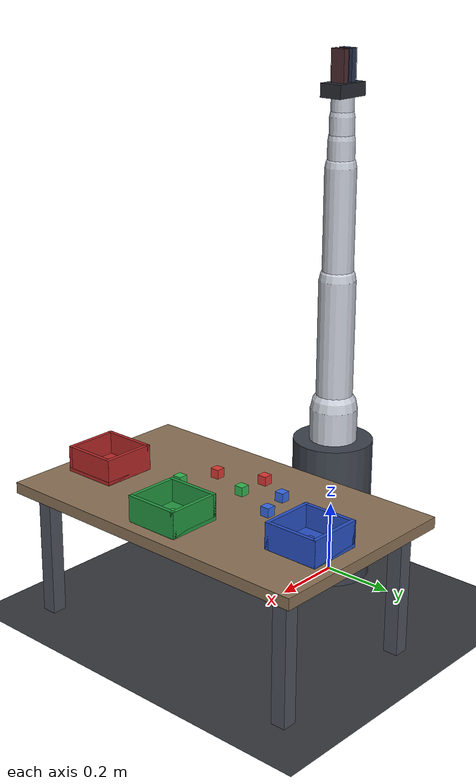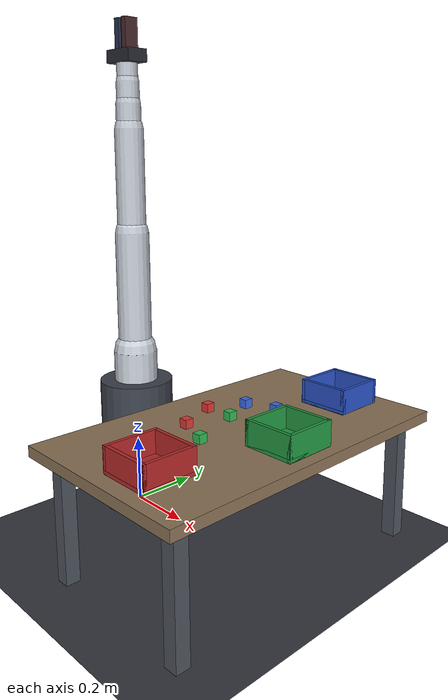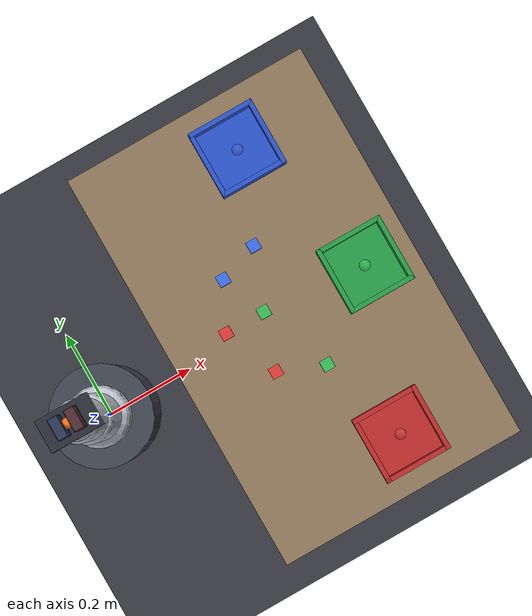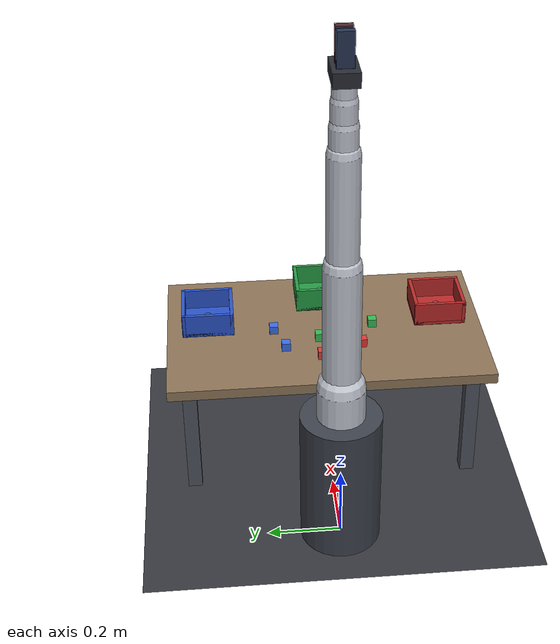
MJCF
<mujoco model="longhorizon_sorting_cell">
  <!--
    Long-Horizon Sorting Cell
    A tabletop pick-place-and-sort workcell for the FFAI Robothon 2026 submission.
    Six colour-coded cubes must be transferred into the matching bin.
  -->

  <compiler angle="radian" autolimits="true"/>
  <option timestep="0.002" integrator="implicitfast" cone="elliptic" impratio="10"
          gravity="0 0 -9.81"/>

  <include file="arm.xml"/>

  <statistic center="0.40 0 0.50" extent="1.4"/>

  <visual>
    <global azimuth="140" elevation="-22" offwidth="1280" offheight="720"/>
    <quality shadowsize="4096" offsamples="8"/>
    <map force="0.1" zfar="30"/>
    <headlight ambient="0.35 0.35 0.35" diffuse="0.55 0.55 0.55" specular="0.2 0.2 0.2"/>
  </visual>

  <asset>
    <texture name="skybox" type="skybox" builtin="gradient"
             rgb1="0.16 0.19 0.26" rgb2="0.02 0.02 0.04" width="512" height="512"/>
    <texture name="grid_tex" type="2d" builtin="checker"
             rgb1="0.18 0.19 0.21" rgb2="0.23 0.24 0.27" width="512" height="512"/>
    <material name="floor_mat" texture="grid_tex" texrepeat="8 8" reflectance="0.08"/>
    <material name="table_mat" rgba="0.55 0.45 0.34 1" reflectance="0.04"/>
    <material name="frame_mat" rgba="0.30 0.32 0.36 1"/>
    <material name="bin_red_mat" rgba="0.72 0.16 0.16 1"/>
    <material name="bin_green_mat" rgba="0.14 0.60 0.26 1"/>
    <material name="bin_blue_mat" rgba="0.16 0.32 0.78 1"/>
    <material name="cube_red_mat" rgba="0.86 0.22 0.20 1"/>
    <material name="cube_green_mat" rgba="0.20 0.72 0.32 1"/>
    <material name="cube_blue_mat" rgba="0.22 0.42 0.90 1"/>
  </asset>

  <default>
    <default class="cube">
      <geom type="box" size="0.0125 0.0125 0.0125" mass="0.06" condim="4"
            friction="1.2 0.03 0.0006" solref="0.006 1" solimp="0.96 0.99 0.001"/>
    </default>
    <default class="bin">
      <geom type="box" density="1500" condim="3" friction="0.8 0.02 0.001"/>
    </default>
  </default>

  <worldbody>
    <light name="key_light" pos="0.90 -0.90 2.10" dir="-0.35 0.35 -1"
           diffuse="0.75 0.75 0.72" specular="0.25 0.25 0.25" castshadow="true"/>
    <light name="fill_light" pos="-0.60 0.80 1.80" dir="0.35 -0.35 -1"
           diffuse="0.30 0.30 0.34" specular="0.05 0.05 0.05" castshadow="false"/>

    <geom name="floor" type="plane" size="4 4 0.05" material="floor_mat" condim="3"/>

    <camera name="overview" pos="1.35 -1.05 1.25"
            xyaxes="0.759 0.651 0 -0.342 0.398 0.854" fovy="45"/>
    <camera name="front" pos="1.55 0 0.95" xyaxes="0 1 0 -0.42 0 0.91" fovy="42"/>
    <camera name="topdown" pos="0.46 0 1.55" xyaxes="1 0 0 0 1 0" fovy="46"/>

    <!-- Workbench -->
    <body name="table" pos="0 0 0">
      <geom name="table_top" type="box" pos="0.46 0 0.355" size="0.28 0.46 0.015"
            material="table_mat" condim="3" friction="0.9 0.02 0.001"/>
      <geom name="table_leg_1" type="box" pos="0.24 0.40 0.170" size="0.02 0.02 0.170" material="frame_mat"/>
      <geom name="table_leg_2" type="box" pos="0.24 -0.40 0.170" size="0.02 0.02 0.170" material="frame_mat"/>
      <geom name="table_leg_3" type="box" pos="0.68 0.40 0.170" size="0.02 0.02 0.170" material="frame_mat"/>
      <geom name="table_leg_4" type="box" pos="0.68 -0.40 0.170" size="0.02 0.02 0.170" material="frame_mat"/>
    </body>

    <!-- Sorting bins. Drop targets are the sites at the bin centre. -->
    <body name="bin_red" pos="0.52 -0.34 0.37">
      <geom class="bin" name="bin_red_floor" pos="0 0 0.005" size="0.075 0.075 0.005" material="bin_red_mat"/>
      <geom class="bin" name="bin_red_wall_xp" pos="0.070 0 0.035" size="0.005 0.075 0.035" material="bin_red_mat"/>
      <geom class="bin" name="bin_red_wall_xn" pos="-0.070 0 0.035" size="0.005 0.075 0.035" material="bin_red_mat"/>
      <geom class="bin" name="bin_red_wall_yp" pos="0 0.070 0.035" size="0.075 0.005 0.035" material="bin_red_mat"/>
      <geom class="bin" name="bin_red_wall_yn" pos="0 -0.070 0.035" size="0.075 0.005 0.035" material="bin_red_mat"/>
      <site name="bin_red_site" pos="0 0 0.02" size="0.012" rgba="0.9 0.3 0.3 0.35"/>
    </body>

    <body name="bin_green" pos="0.63 0 0.37">
      <geom class="bin" name="bin_green_floor" pos="0 0 0.005" size="0.075 0.075 0.005" material="bin_green_mat"/>
      <geom class="bin" name="bin_green_wall_xp" pos="0.070 0 0.035" size="0.005 0.075 0.035" material="bin_green_mat"/>
      <geom class="bin" name="bin_green_wall_xn" pos="-0.070 0 0.035" size="0.005 0.075 0.035" material="bin_green_mat"/>
      <geom class="bin" name="bin_green_wall_yp" pos="0 0.070 0.035" size="0.075 0.005 0.035" material="bin_green_mat"/>
      <geom class="bin" name="bin_green_wall_yn" pos="0 -0.070 0.035" size="0.075 0.005 0.035" material="bin_green_mat"/>
      <site name="bin_green_site" pos="0 0 0.02" size="0.012" rgba="0.3 0.9 0.4 0.35"/>
    </body>

    <body name="bin_blue" pos="0.52 0.34 0.37">
      <geom class="bin" name="bin_blue_floor" pos="0 0 0.005" size="0.075 0.075 0.005" material="bin_blue_mat"/>
      <geom class="bin" name="bin_blue_wall_xp" pos="0.070 0 0.035" size="0.005 0.075 0.035" material="bin_blue_mat"/>
      <geom class="bin" name="bin_blue_wall_xn" pos="-0.070 0 0.035" size="0.005 0.075 0.035" material="bin_blue_mat"/>
      <geom class="bin" name="bin_blue_wall_yp" pos="0 0.070 0.035" size="0.075 0.005 0.035" material="bin_blue_mat"/>
      <geom class="bin" name="bin_blue_wall_yn" pos="0 -0.070 0.035" size="0.075 0.005 0.035" material="bin_blue_mat"/>
      <site name="bin_blue_site" pos="0 0 0.02" size="0.012" rgba="0.3 0.4 0.9 0.35"/>
    </body>

    <!-- Six cubes to be sorted. Free joints, randomised at reset by the Python layer. -->
    <body name="cube_red_1" pos="0.36 -0.10 0.3825">
      <freejoint name="cube_red_1_free"/>
      <geom class="cube" name="cube_red_1_geom" material="cube_red_mat"/>
      <site name="cube_red_1_site" size="0.004" rgba="1 1 1 0"/>
    </body>

    <body name="cube_red_2" pos="0.31 0.02 0.3825">
      <freejoint name="cube_red_2_free"/>
      <geom class="cube" name="cube_red_2_geom" material="cube_red_mat"/>
      <site name="cube_red_2_site" size="0.004" rgba="1 1 1 0"/>
    </body>

    <body name="cube_green_1" pos="0.40 0.02 0.3825">
      <freejoint name="cube_green_1_free"/>
      <geom class="cube" name="cube_green_1_geom" material="cube_green_mat"/>
      <site name="cube_green_1_site" size="0.004" rgba="1 1 1 0"/>
    </body>

    <body name="cube_green_2" pos="0.46 -0.14 0.3825">
      <freejoint name="cube_green_2_free"/>
      <geom class="cube" name="cube_green_2_geom" material="cube_green_mat"/>
      <site name="cube_green_2_site" size="0.004" rgba="1 1 1 0"/>
    </body>

    <body name="cube_blue_1" pos="0.36 0.12 0.3825">
      <freejoint name="cube_blue_1_free"/>
      <geom class="cube" name="cube_blue_1_geom" material="cube_blue_mat"/>
      <site name="cube_blue_1_site" size="0.004" rgba="1 1 1 0"/>
    </body>

    <body name="cube_blue_2" pos="0.45 0.15 0.3825">
      <freejoint name="cube_blue_2_free"/>
      <geom class="cube" name="cube_blue_2_geom" material="cube_blue_mat"/>
      <site name="cube_blue_2_site" size="0.004" rgba="1 1 1 0"/>
    </body>
  </worldbody>

  <sensor>
    <framepos name="pose_cube_red_1" objtype="site" objname="cube_red_1_site"/>
    <framepos name="pose_cube_red_2" objtype="site" objname="cube_red_2_site"/>
    <framepos name="pose_cube_green_1" objtype="site" objname="cube_green_1_site"/>
    <framepos name="pose_cube_green_2" objtype="site" objname="cube_green_2_site"/>
    <framepos name="pose_cube_blue_1" objtype="site" objname="cube_blue_1_site"/>
    <framepos name="pose_cube_blue_2" objtype="site" objname="cube_blue_2_site"/>
  </sensor>
</mujoco>

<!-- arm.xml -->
<mujoco model="sortbot_arm">
  <!-- 6-DoF arm with a coupled parallel-jaw gripper. Primitive geoms only, no meshes. -->

  <compiler angle="radian" autolimits="true"/>

  <default>
    <default class="arm">
      <joint type="hinge" damping="12" armature="0.12" frictionloss="0.35"/>
      <geom type="capsule" rgba="0.78 0.80 0.84 1" density="850"
            friction="0.9 0.02 0.001" solref="0.008 1" solimp="0.95 0.99 0.001"/>
      <position kp="1200" kv="90" forcerange="-280 280"/>
    </default>
    <default class="jaw">
      <joint type="slide" damping="40" armature="0.02"/>
      <geom type="box" rgba="0.16 0.17 0.20 1" density="1100" condim="4" priority="2"
            friction="1.8 0.06 0.0008" solref="0.006 1" solimp="0.97 0.995 0.001"/>
    </default>
  </default>

  <worldbody>
    <body name="pedestal" pos="0 0 0">
      <geom name="pedestal_geom" type="cylinder" size="0.11 0.20" pos="0 0 0.20"
            rgba="0.24 0.26 0.30 1" density="2000"/>

      <body name="shoulder_link" pos="0 0 0.44">
        <joint class="arm" name="joint_1" axis="0 0 1" range="-3.05 3.05"/>
        <geom class="arm" name="shoulder_geom" fromto="0 0 -0.05 0 0 0.05" size="0.065"/>

        <body name="upper_arm_link" pos="0 0 0.07">
          <joint class="arm" name="joint_2" axis="0 1 0" range="-2.15 2.15"/>
          <geom class="arm" name="upper_arm_geom" fromto="0 0 0 0 0 0.34" size="0.050"/>

          <body name="forearm_link" pos="0 0 0.34">
            <joint class="arm" name="joint_3" axis="0 1 0" range="-2.70 2.70"/>
            <geom class="arm" name="forearm_geom" fromto="0 0 0 0 0 0.30" size="0.042"/>

            <body name="wrist_1_link" pos="0 0 0.30">
              <joint class="arm" name="joint_4" axis="0 1 0" range="-2.70 2.70"/>
              <geom class="arm" name="wrist_1_geom" fromto="0 0 0 0 0 0.07" size="0.036"/>

              <body name="wrist_2_link" pos="0 0 0.07">
                <joint class="arm" name="joint_5" axis="0 0 1" range="-3.05 3.05"/>
                <geom class="arm" name="wrist_2_geom" fromto="0 0 0 0 0 0.06" size="0.033"/>

                <body name="wrist_3_link" pos="0 0 0.06">
                  <joint class="arm" name="joint_6" axis="0 1 0" range="-3.05 3.05"/>
                  <geom class="arm" name="wrist_3_geom" fromto="0 0 0 0 0 0.05" size="0.030"/>

                  <body name="gripper_base" pos="0 0 0.05">
                    <geom name="gripper_base_geom" type="box" size="0.052 0.032 0.018"
                          pos="0 0 0.018" rgba="0.16 0.17 0.20 1" density="1200"/>

                    <site name="ee_site" pos="0 0 0.085" size="0.010" rgba="1.0 0.45 0.10 1"/>
                    <site name="wrist_ft_site" pos="0 0 0.0" size="0.008" rgba="0.2 0.8 1.0 0.4"/>
                    <camera name="wrist_cam" pos="0 -0.11 0.02" xyaxes="1 0 0 0 0.45 0.89" fovy="72"/>

                    <body name="left_jaw" pos="0.016 0 0.036">
                      <joint class="jaw" name="left_jaw_joint" axis="1 0 0" range="0 0.036"/>
                      <geom class="jaw" name="left_jaw_pad" size="0.009 0.020 0.042" pos="0 0 0.042"/>
                      <site name="left_pad_site" type="box" pos="0 0 0.042"
                            size="0.010 0.021 0.043" rgba="0.9 0.2 0.2 0.12"/>
                    </body>

                    <body name="right_jaw" pos="-0.016 0 0.036">
                      <joint class="jaw" name="right_jaw_joint" axis="-1 0 0" range="0 0.036"/>
                      <geom class="jaw" name="right_jaw_pad" size="0.009 0.020 0.042" pos="0 0 0.042"/>
                      <site name="right_pad_site" type="box" pos="0 0 0.042"
                            size="0.010 0.021 0.043" rgba="0.2 0.4 0.9 0.12"/>
                    </body>
                  </body>
                </body>
              </body>
            </body>
          </body>
        </body>
      </body>
    </body>
  </worldbody>

  <equality>
    <!-- Mechanically couple the two jaws so a single actuator drives the gripper. -->
    <joint name="jaw_coupling" joint1="right_jaw_joint" joint2="left_jaw_joint"
           polycoef="0 1 0 0 0" solref="0.005 1"/>
  </equality>

  <actuator>
    <position class="arm" name="act_joint_1" joint="joint_1" ctrlrange="-3.05 3.05"/>
    <position class="arm" name="act_joint_2" joint="joint_2" ctrlrange="-2.15 2.15"/>
    <position class="arm" name="act_joint_3" joint="joint_3" ctrlrange="-2.70 2.70"/>
    <position class="arm" name="act_joint_4" joint="joint_4" ctrlrange="-2.70 2.70"/>
    <position class="arm" name="act_joint_5" joint="joint_5" ctrlrange="-3.05 3.05"/>
    <position class="arm" name="act_joint_6" joint="joint_6" ctrlrange="-3.05 3.05"/>
    <position name="act_gripper" joint="left_jaw_joint" ctrlrange="0 0.036"
              kp="1400" kv="60" forcerange="-120 120"/>
  </actuator>

  <sensor>
    <framepos name="ee_pos" objtype="site" objname="ee_site"/>
    <framequat name="ee_quat" objtype="site" objname="ee_site"/>
    <framelinvel name="ee_linvel" objtype="site" objname="ee_site"/>

    <force name="wrist_force" site="wrist_ft_site"/>
    <torque name="wrist_torque" site="wrist_ft_site"/>

    <touch name="left_pad_touch" site="left_pad_site"/>
    <touch name="right_pad_touch" site="right_pad_site"/>

    <jointpos name="qpos_joint_1" joint="joint_1"/>
    <jointpos name="qpos_joint_2" joint="joint_2"/>
    <jointpos name="qpos_joint_3" joint="joint_3"/>
    <jointpos name="qpos_joint_4" joint="joint_4"/>
    <jointpos name="qpos_joint_5" joint="joint_5"/>
    <jointpos name="qpos_joint_6" joint="joint_6"/>
    <jointpos name="qpos_gripper" joint="left_jaw_joint"/>

    <jointvel name="qvel_joint_1" joint="joint_1"/>
    <jointvel name="qvel_joint_2" joint="joint_2"/>
    <jointvel name="qvel_joint_3" joint="joint_3"/>
    <jointvel name="qvel_joint_4" joint="joint_4"/>
    <jointvel name="qvel_joint_5" joint="joint_5"/>
    <jointvel name="qvel_joint_6" joint="joint_6"/>
    <jointvel name="qvel_gripper" joint="left_jaw_joint"/>
  </sensor>
</mujoco>
